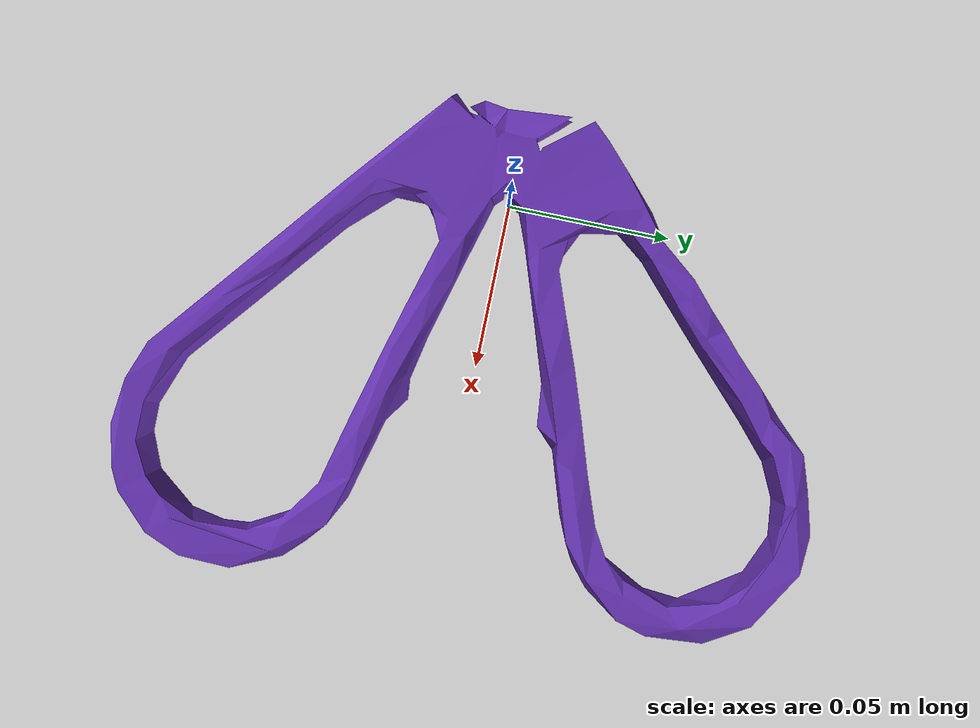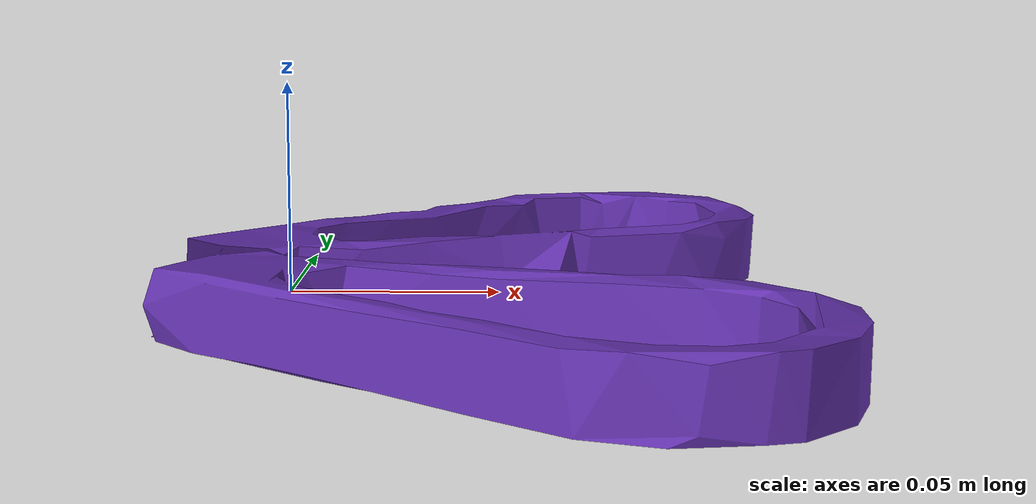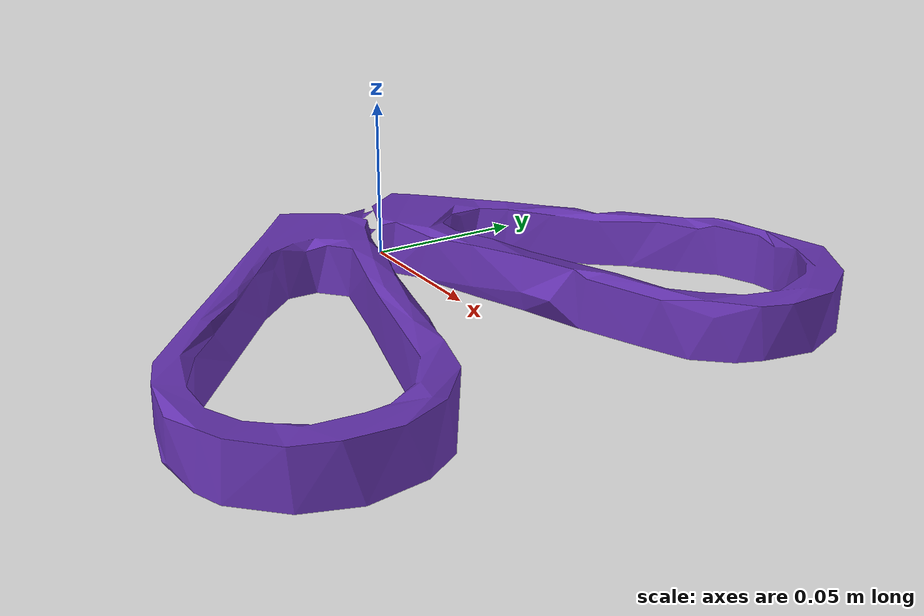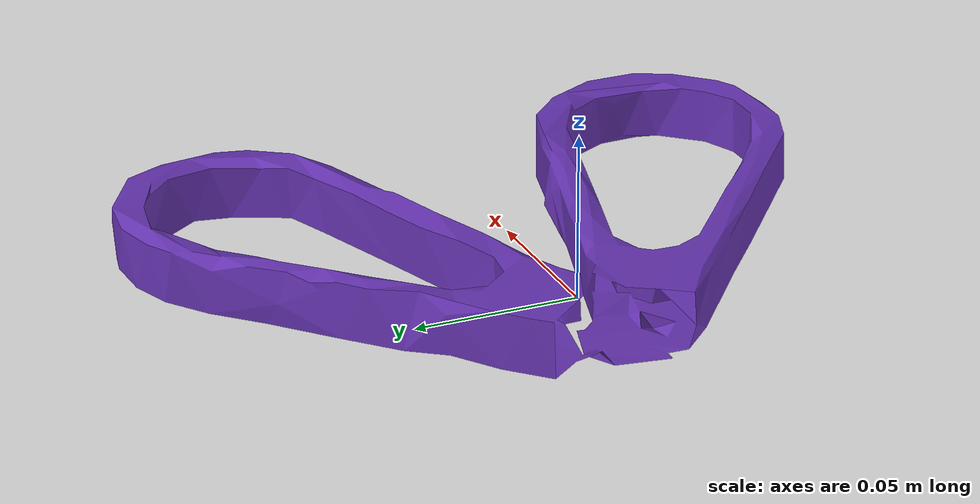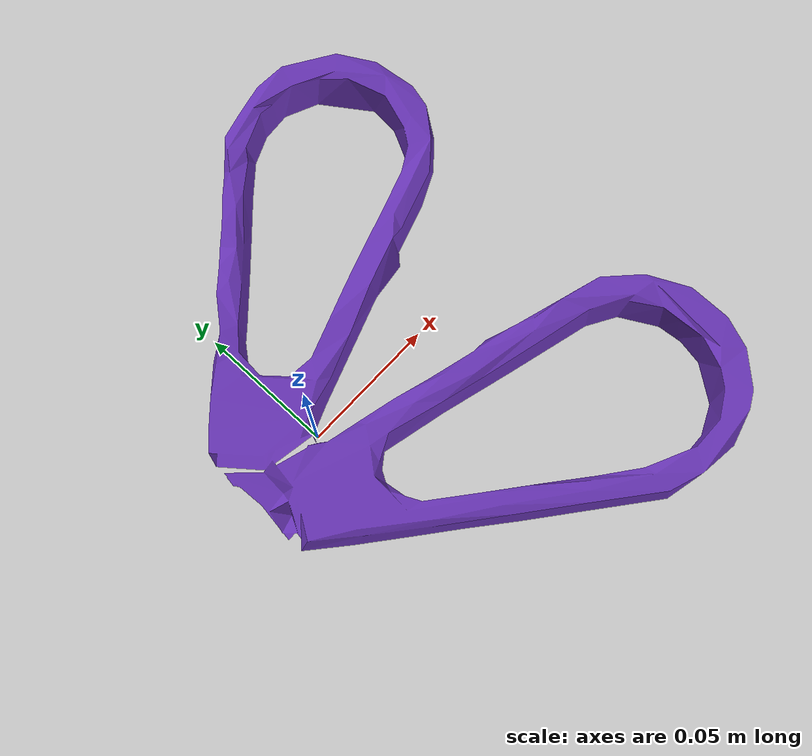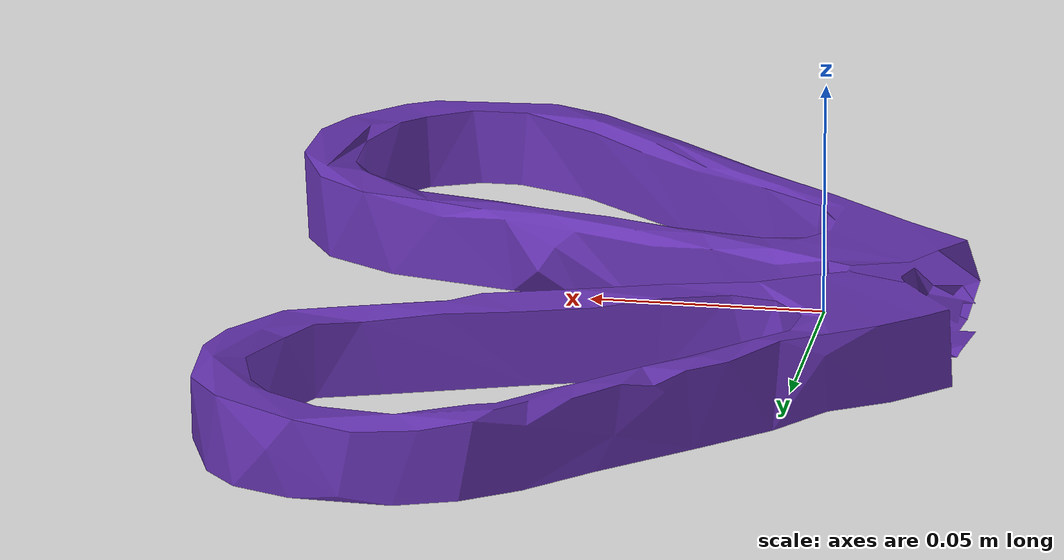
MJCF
<mujoco model="top_watertight_tiny">
  <default>
    <default group="2" type="mesh" contype="0" conaffinity="0">
      <geom group="2" type="mesh" contype="0" conaffinity="0"/>
    </default>
    <default group="3" type="mesh">
      <geom group="3" type="mesh"/>
    </default>
  </default>
  <asset>
    <mesh file="top_watertight_tiny.obj"/>
    <mesh file="top_watertight_tiny_collision_0.obj"/>
    <mesh file="top_watertight_tiny_collision_1.obj"/>
    <mesh file="top_watertight_tiny_collision_2.obj"/>
    <mesh file="top_watertight_tiny_collision_3.obj"/>
    <mesh file="top_watertight_tiny_collision_4.obj"/>
    <mesh file="top_watertight_tiny_collision_5.obj"/>
    <mesh file="top_watertight_tiny_collision_6.obj"/>
    <mesh file="top_watertight_tiny_collision_7.obj"/>
    <mesh file="top_watertight_tiny_collision_8.obj"/>
    <mesh file="top_watertight_tiny_collision_9.obj"/>
    <mesh file="top_watertight_tiny_collision_10.obj"/>
    <mesh file="top_watertight_tiny_collision_11.obj"/>
    <mesh file="top_watertight_tiny_collision_12.obj"/>
    <mesh file="top_watertight_tiny_collision_13.obj"/>
    <mesh file="top_watertight_tiny_collision_14.obj"/>
    <mesh file="top_watertight_tiny_collision_15.obj"/>
    <mesh file="top_watertight_tiny_collision_16.obj"/>
    <mesh file="top_watertight_tiny_collision_17.obj"/>
    <mesh file="top_watertight_tiny_collision_18.obj"/>
    <mesh file="top_watertight_tiny_collision_19.obj"/>
    <mesh file="top_watertight_tiny_collision_20.obj"/>
    <mesh file="top_watertight_tiny_collision_21.obj"/>
    <mesh file="top_watertight_tiny_collision_22.obj"/>
    <mesh file="top_watertight_tiny_collision_23.obj"/>
    <mesh file="top_watertight_tiny_collision_24.obj"/>
    <mesh file="top_watertight_tiny_collision_25.obj"/>
    <mesh file="top_watertight_tiny_collision_26.obj"/>
    <mesh file="top_watertight_tiny_collision_27.obj"/>
    <mesh file="top_watertight_tiny_collision_28.obj"/>
    <mesh file="top_watertight_tiny_collision_29.obj"/>
    <mesh file="top_watertight_tiny_collision_30.obj"/>
    <mesh file="top_watertight_tiny_collision_31.obj"/>
    <mesh file="top_watertight_tiny_collision_32.obj"/>
    <mesh file="top_watertight_tiny_collision_33.obj"/>
    <mesh file="top_watertight_tiny_collision_34.obj"/>
  </asset>
  <worldbody>
    <body name="top_watertight_tiny">
      <freejoint/>
      <geom mesh="top_watertight_tiny" group="2" type="mesh" rgba="0.4 0.2 0.7 1" contype="0" conaffinity="0"/>
      <geom mesh="top_watertight_tiny_collision_0" rgba="0.4626614823373031 0.1838827324704353 0.3422918710329522 1" group="3" type="mesh"/>
      <geom mesh="top_watertight_tiny_collision_1" rgba="0.5445767869313037 0.6353428325800452 0.9513442831535136 1" group="3" type="mesh"/>
      <geom mesh="top_watertight_tiny_collision_2" rgba="0.6336134422852723 0.6255807963234515 0.6682565030784698 1" group="3" type="mesh"/>
      <geom mesh="top_watertight_tiny_collision_3" rgba="0.8666026543069485 0.4162442920525299 0.680003788764021 1" group="3" type="mesh"/>
      <geom mesh="top_watertight_tiny_collision_4" rgba="0.32906469533046756 0.0600455643497394 0.1363656576386172 1" group="3" type="mesh"/>
      <geom mesh="top_watertight_tiny_collision_5" rgba="0.3985313316887502 0.6567212318487765 0.01568228580671205 1" group="3" type="mesh"/>
      <geom mesh="top_watertight_tiny_collision_6" rgba="0.9726426098871301 0.14845858309718185 0.1244204411026597 1" group="3" type="mesh"/>
      <geom mesh="top_watertight_tiny_collision_7" rgba="0.6166946742347542 0.8127442586446252 0.6136302520286487 1" group="3" type="mesh"/>
      <geom mesh="top_watertight_tiny_collision_8" rgba="0.897796863519104 0.20624877186199198 0.053327943024294666 1" group="3" type="mesh"/>
      <geom mesh="top_watertight_tiny_collision_9" rgba="0.14520633074354317 0.31813141339146844 0.43464573818850316 1" group="3" type="mesh"/>
      <geom mesh="top_watertight_tiny_collision_10" rgba="0.28618801409937744 0.03231878023093737 0.5545849966216458 1" group="3" type="mesh"/>
      <geom mesh="top_watertight_tiny_collision_11" rgba="0.33667143897251905 0.19132592612504018 0.5420719966404363 1" group="3" type="mesh"/>
      <geom mesh="top_watertight_tiny_collision_12" rgba="0.6317309956890945 0.8794461866243029 0.6633222001959029 1" group="3" type="mesh"/>
      <geom mesh="top_watertight_tiny_collision_13" rgba="0.8852617952192834 0.1665021778246567 0.052483864682979386 1" group="3" type="mesh"/>
      <geom mesh="top_watertight_tiny_collision_14" rgba="0.9336684206637588 0.06660640191980272 0.5983973207848111 1" group="3" type="mesh"/>
      <geom mesh="top_watertight_tiny_collision_15" rgba="0.07739295950708724 0.3127878860044081 0.417180914166438 1" group="3" type="mesh"/>
      <geom mesh="top_watertight_tiny_collision_16" rgba="0.4497838643167441 0.5716504149774757 0.027655358773777672 1" group="3" type="mesh"/>
      <geom mesh="top_watertight_tiny_collision_17" rgba="0.08265158974860343 0.3754078849383119 0.23140959348509071 1" group="3" type="mesh"/>
      <geom mesh="top_watertight_tiny_collision_18" rgba="0.5110635373474605 0.023542700980439757 0.6798269046395641 1" group="3" type="mesh"/>
      <geom mesh="top_watertight_tiny_collision_19" rgba="0.242699044149689 0.4519657482481624 0.15087064427343944 1" group="3" type="mesh"/>
      <geom mesh="top_watertight_tiny_collision_20" rgba="0.14000537994548423 0.0077773560607465875 0.16156128134725267 1" group="3" type="mesh"/>
      <geom mesh="top_watertight_tiny_collision_21" rgba="0.28742143758663974 0.6462493317720278 0.6105842590507622 1" group="3" type="mesh"/>
      <geom mesh="top_watertight_tiny_collision_22" rgba="0.20436233576347418 0.5933003269387017 0.9530426634492802 1" group="3" type="mesh"/>
      <geom mesh="top_watertight_tiny_collision_23" rgba="0.04982906524167263 0.2687611653223865 0.1793404641356069 1" group="3" type="mesh"/>
      <geom mesh="top_watertight_tiny_collision_24" rgba="0.31981838340089663 0.278560140519742 0.3471224938805122 1" group="3" type="mesh"/>
      <geom mesh="top_watertight_tiny_collision_25" rgba="0.9893095309858724 0.7059760041327703 0.6828871267577575 1" group="3" type="mesh"/>
      <geom mesh="top_watertight_tiny_collision_26" rgba="0.6256993170482554 0.9816709489282667 0.2608909608607809 1" group="3" type="mesh"/>
      <geom mesh="top_watertight_tiny_collision_27" rgba="0.5440962077147867 0.7392832115273674 0.5709038614339648 1" group="3" type="mesh"/>
      <geom mesh="top_watertight_tiny_collision_28" rgba="0.3554853131499539 0.19645293277441844 0.6721844784846921 1" group="3" type="mesh"/>
      <geom mesh="top_watertight_tiny_collision_29" rgba="0.6458535810848641 0.2702009490993982 0.43801011727023853 1" group="3" type="mesh"/>
      <geom mesh="top_watertight_tiny_collision_30" rgba="0.14917060355090117 0.42500265975452534 0.6846671452191576 1" group="3" type="mesh"/>
      <geom mesh="top_watertight_tiny_collision_31" rgba="0.7735626498047639 0.33585241143505584 0.3471092688452001 1" group="3" type="mesh"/>
      <geom mesh="top_watertight_tiny_collision_32" rgba="0.05192112931223314 0.6913553836998152 0.6816882756199322 1" group="3" type="mesh"/>
      <geom mesh="top_watertight_tiny_collision_33" rgba="0.14829705854387876 0.9450658963532927 0.999130170472614 1" group="3" type="mesh"/>
      <geom mesh="top_watertight_tiny_collision_34" rgba="0.6483472666778693 0.8574056285944275 0.6694123652213013 1" group="3" type="mesh"/>
    </body>
  </worldbody>
</mujoco>
